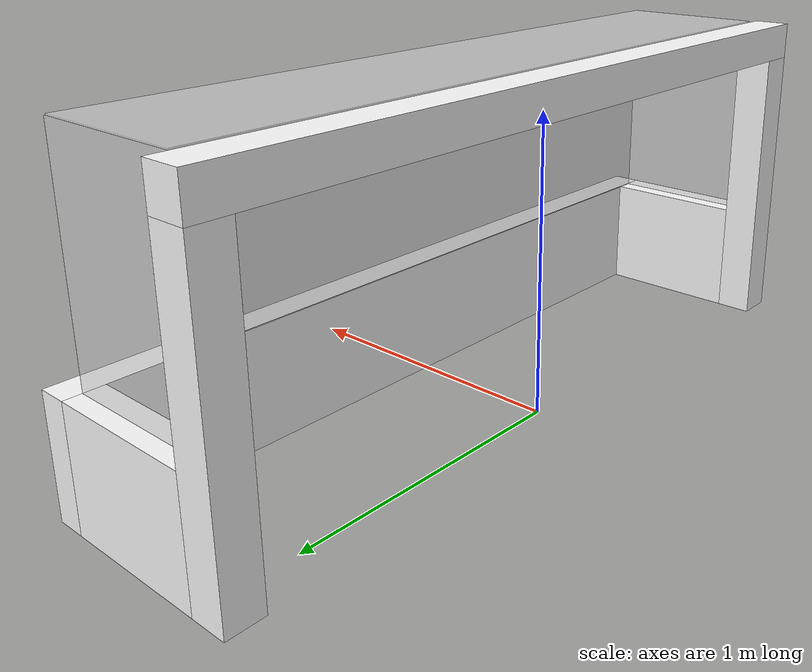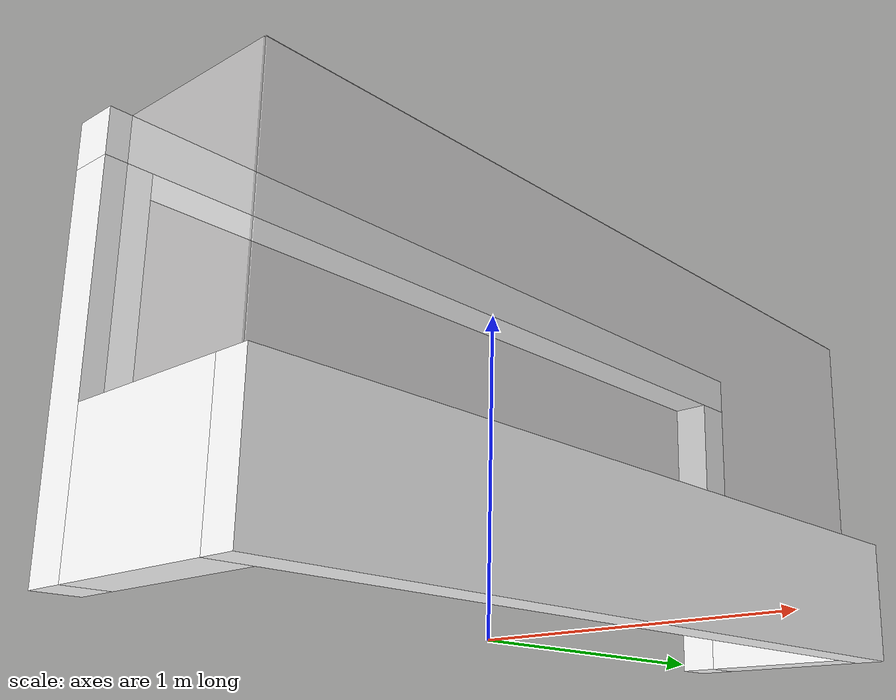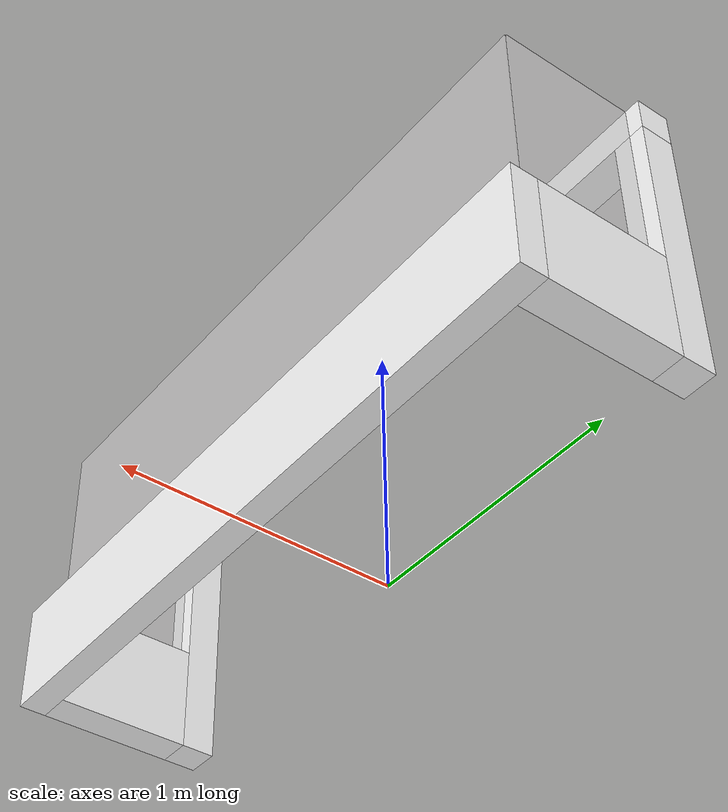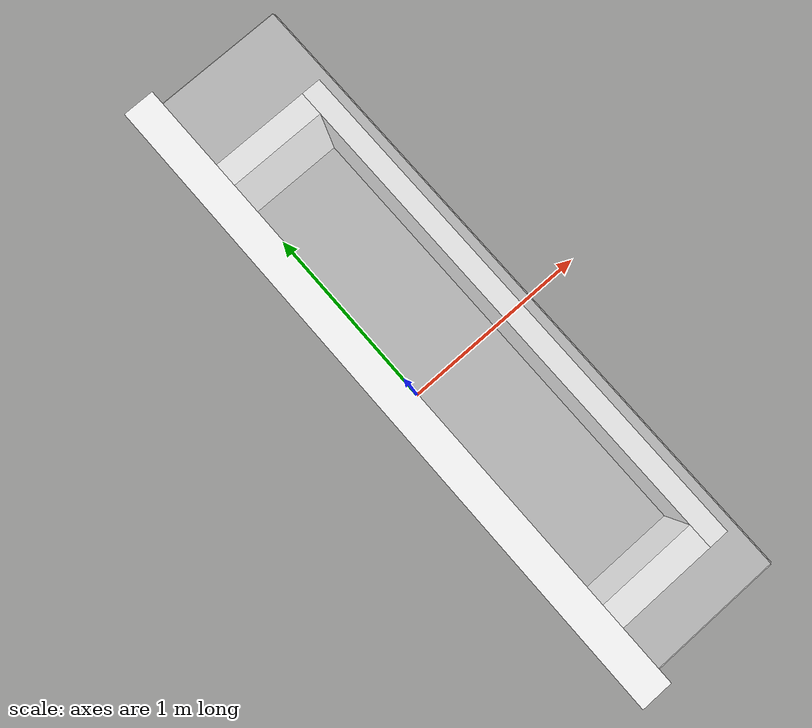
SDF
<?xml version="1.0"?>
<!-- XML 声明：标准文件头 -->
<!-- SDF 根标签：版本 1.11，适配 Gazebo Harmonic -->
<sdf version="1.11">

    <!-- 模型定义：RoboCup15_MSL_Goal
       整个文件是一个【球门】模型 -->
    <model name="RoboCup15_MSL_Goal">
        <!-- static=true：静态模型，固定不动，不受物理力影响 -->
        <static>true</static>

        <!-- 左侧门柱：垂直立柱 -->
        <link name="left_post">      <!-- 连杆：左门柱 -->
            <!-- 位姿：X Y Z 横滚 俯仰 偏航 -->
            <pose>-0.0625 1.2625 0.5 0 0 0</pose>

            <!-- 碰撞体：负责物理碰撞 -->
            <collision name="collision">
                <!-- 几何形状容器 -->
                <geometry>
                    <!-- 立方体：长 宽 高 -->
                    <box>
                        <size>0.125 0.125 1.0</size>
                    </box>
                </geometry>
            </collision>

            <!-- 视觉体：负责显示外观 -->
            <visual name="visual">
                <geometry>
                    <box>
                        <size>0.125 0.125 1.0</size>
                    </box>
                </geometry>
                <!-- 材质：纯白色，哑光 -->
                <material>
                    <ambient>1 1 1 1</ambient>          <!-- 环境光色 -->
                    <diffuse>1 1 1 1</diffuse>          <!-- 漫反射色 -->
                    <specular>0.1 0.1 0.1 1</specular>          <!-- 高光 -->
                </material>
            </visual>
        </link>

        <!-- 右侧门柱：垂直立柱 -->
        <link name="right_post">
            <pose>-0.0625 -1.2625 0.5 0 0 0</pose>
            <collision name="collision">
                <geometry>
                    <box>
                        <size>0.125 0.125 1.0</size>
                    </box>
                </geometry>
            </collision>
            <visual name="visual">
                <geometry>
                    <box>
                        <size>0.125 0.125 1.0</size>
                    </box>
                </geometry>
                <material>
                    <ambient>1 1 1 1</ambient>
                    <diffuse>1 1 1 1</diffuse>
                    <specular>0.1 0.1 0.1 1</specular>
                </material>
            </visual>
        </link>

        <!-- 横梁：连接左右门柱顶部 -->
        <link name="crossbar">
            <pose>-0.0625 0 1.0625 0 0 0</pose>
            <collision name="collision">
                <geometry>
                    <box>
                        <size>0.125 2.65 0.125</size>
                    </box>
                </geometry>
            </collision>
            <visual name="visual">
                <geometry>
                    <box>
                        <size>0.125 2.65 0.125</size>
                    </box>
                </geometry>
                <material>
                    <ambient>1 1 1 1</ambient>
                    <diffuse>1 1 1 1</diffuse>
                    <specular>0.1 0.1 0.1 1</specular>
                </material>
            </visual>
        </link>

        <!-- 左下支撑：球门左侧底部支架 -->
        <link name="left_support_horiz_lower">
            <pose>0.25 1.2625 0.2 0 0 0</pose>
            <collision name="collision">
                <geometry>
                    <box>
                        <size>0.5 0.125 0.4</size>
                    </box>
                </geometry>
            </collision>
            <visual name="visual">
                <geometry>
                    <box>
                        <size>0.5 0.125 0.4</size>
                    </box>
                </geometry>
                <material>
                    <ambient>1 1 1 1</ambient>
                    <diffuse>1 1 1 1</diffuse>
                    <specular>0.1 0.1 0.1 1</specular>
                </material>
            </visual>
        </link>

        <!-- 右下支撑：球门右侧底部支架 -->
        <link name="right_support_horiz_lower">
            <pose>0.25 -1.2625 0.2 0 0 0</pose>
            <collision name="collision">
                <geometry>
                    <box>
                        <size>0.5 0.125 0.4</size>
                    </box>
                </geometry>
            </collision>
            <visual name="visual">
                <geometry>
                    <box>
                        <size>0.5 0.125 0.4</size>
                    </box>
                </geometry>
                <material>
                    <ambient>1 1 1 1</ambient>
                    <diffuse>1 1 1 1</diffuse>
                    <specular>0.1 0.1 0.1 1</specular>
                </material>
            </visual>
        </link>

        <!-- 中间支撑：球门后方中间支架 -->
        <link name="center_support_horiz_lower">
            <pose>0.55 0 0.2 0 0 0</pose>
            <collision name="collision">
                <geometry>
                    <box>
                        <size>0.10 2.65 0.4</size>
                    </box>
                </geometry>
            </collision>
            <visual name="visual">
                <geometry>
                    <box>
                        <size>0.10 2.65 0.4</size>
                    </box>
                </geometry>
                <material>
                    <ambient>1 1 1 1</ambient>
                    <diffuse>1 1 1 1</diffuse>
                    <specular>0.1 0.1 0.1 1</specular>
                </material>
            </visual>
        </link>

        <!-- 中间球网：球门主体网 -->
        <link name="center_net">
            <pose>0.5 0 0.7625 0 0 0</pose>
            <collision name="collision">
                <geometry>
                    <box>
                        <size>0.01 2.525 0.725</size>
                    </box>
                </geometry>
            </collision>
            <visual name="visual">
                <geometry>
                    <box>
                        <size>0.01 2.525 0.725</size>
                    </box>
                </geometry>
                <material>
                    <!-- 半透明浅灰色 -->
                    <ambient>0.9 0.9 0.9 0.5</ambient>
                    <diffuse>0.9 0.9 0.9 0.5</diffuse>
                    <specular>0.2 0.2 0.2 1.0</specular>

                    <!-- PBR 物理渲染 -->
                    <pbr>
                        <metal>
                            <albedo_map>./materials/textures/net.png</albedo_map>              <!-- 球网纹理图 -->
                            <roughness>0.5</roughness>              <!-- 粗糙度：中等 -->
                            <metalness>0.0</metalness>              <!-- 非金属 -->
                        </metal>
                    </pbr>
                </material>
            </visual>
        </link>

        <!-- 左侧球网：球门左侧网 -->
        <link name="left_net">
            <pose>0.25 1.2625 0.7625 0 0 0</pose>
            <collision name="collision">
                <geometry>
                    <box>
                        <size>0.5 0.01 0.725</size>
                    </box>
                </geometry>
            </collision>
            <visual name="visual">
                <geometry>
                    <box>
                        <size>0.5 0.01 0.725</size>
                    </box>
                </geometry>
                <material>
                    <ambient>0.9 0.9 0.9 0.5</ambient>
                    <diffuse>0.9 0.9 0.9 0.5</diffuse>
                    <specular>0.2 0.2 0.2 1.0</specular>
                    <pbr>
                        <metal>
                            <albedo_map>./materials/textures/net.png</albedo_map>
                            <roughness>0.5</roughness>
                            <metalness>0.0</metalness>
                        </metal>
                    </pbr>
                </material>
            </visual>
        </link>

        <!-- 右侧球网：球门右侧网 -->
        <link name="right_net">
            <pose>0.25 -1.2625 0.7625 0 0 0</pose>
            <collision name="collision">
                <geometry>
                    <box>
                        <size>0.5 0.01 0.725</size>
                    </box>
                </geometry>
            </collision>
            <visual name="visual">
                <geometry>
                    <box>
                        <size>0.5 0.01 0.725</size>
                    </box>
                </geometry>
                <material>
                    <ambient>0.9 0.9 0.9 0.5</ambient>
                    <diffuse>0.9 0.9 0.9 0.5</diffuse>
                    <specular>0.2 0.2 0.2 1.0</specular>
                    <pbr>
                        <metal>
                            <albedo_map>./materials/textures/net.png</albedo_map>
                            <roughness>0.5</roughness>
                            <metalness>0.0</metalness>
                        </metal>
                    </pbr>
                </material>
            </visual>
        </link>

        <!-- 上部球网：球门顶部网 -->
        <link name="upper_net">
            <pose>0.25 0 1.125 0 0 0</pose>
            <collision name="collision">
                <geometry>
                    <box>
                        <size>0.5 2.525 0.01</size>
                    </box>
                </geometry>
                <!-- 最大碰撞接触点数量 -->
                <max_contacts>10</max_contacts>
            </collision>
            <visual name="visual">
                <geometry>
                    <box>
                        <size>0.5 2.525 0.01</size>
                    </box>
                </geometry>
                <material>
                    <ambient>0.9 0.9 0.9 0.5</ambient>
                    <diffuse>0.9 0.9 0.9 0.5</diffuse>
                    <specular>0.2 0.2 0.2 1.0</specular>
                    <pbr>
                        <metal>
                            <albedo_map>./materials/textures/net.png</albedo_map>
                            <roughness>0.5</roughness>
                            <metalness>0.0</metalness>
                        </metal>
                    </pbr>
                </material>
            </visual>
        </link>

        <!-- 右门柱 → 左门柱（固定） -->
        <joint name="right_post_to_left" type="fixed">
            <parent>left_post</parent>
            <child>right_post</child>
        </joint>

        <!-- 横梁 → 左门柱（固定） -->
        <joint name="crossbar_to_left" type="fixed">
            <parent>left_post</parent>
            <child>crossbar</child>
        </joint>

        <!-- 左下支撑 → 左门柱（固定） -->
        <joint name="left_support_to_left" type="fixed">
            <parent>left_post</parent>
            <child>left_support_horiz_lower</child>
        </joint>

        <!-- 右下支撑 → 左门柱（固定） -->
        <joint name="right_support_to_left" type="fixed">
            <parent>left_post</parent>
            <child>right_support_horiz_lower</child>
        </joint>

        <!-- 中间支撑 → 左门柱（固定） -->
        <joint name="center_support_to_left" type="fixed">
            <parent>left_post</parent>
            <child>center_support_horiz_lower</child>
        </joint>

        <!-- 各球网同理... -->
        <joint name="center_net_to_left" type="fixed">
            <parent>left_post</parent>
            <child>center_net</child>
        </joint>

        <joint name="left_net_to_left" type="fixed">
            <parent>left_post</parent>
            <child>left_net</child>
        </joint>

        <joint name="right_net_to_left" type="fixed">
            <parent>left_post</parent>
            <child>right_net</child>
        </joint>

        <joint name="upper_net_to_left" type="fixed">
            <parent>left_post</parent>
            <child>upper_net</child>
        </joint>
    </model>  <!--
    结束球门模型 -->
</sdf><!--
结束SDF -->
